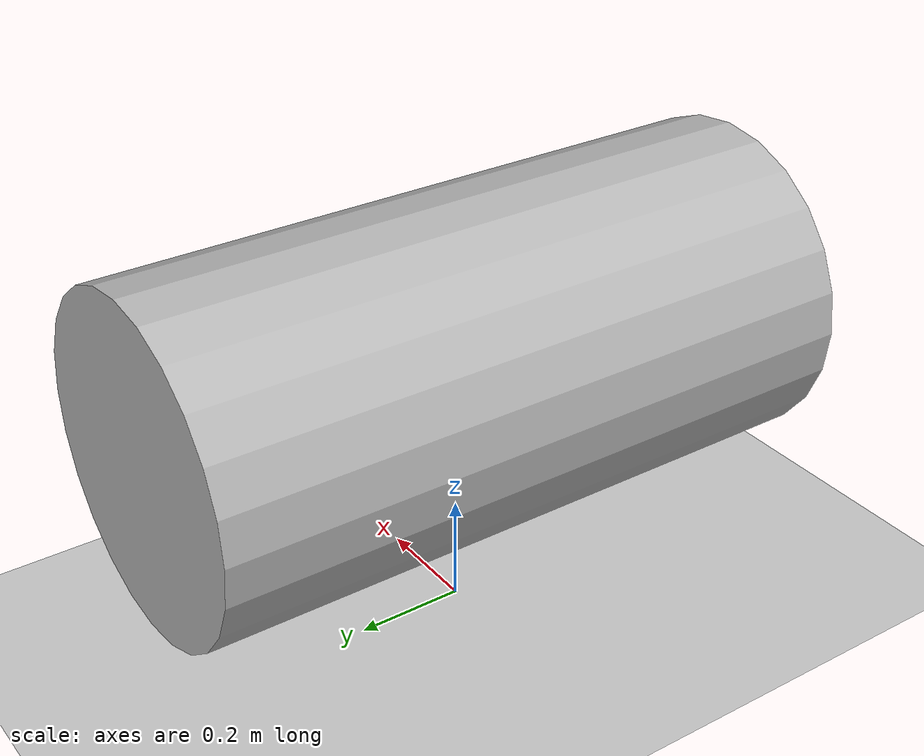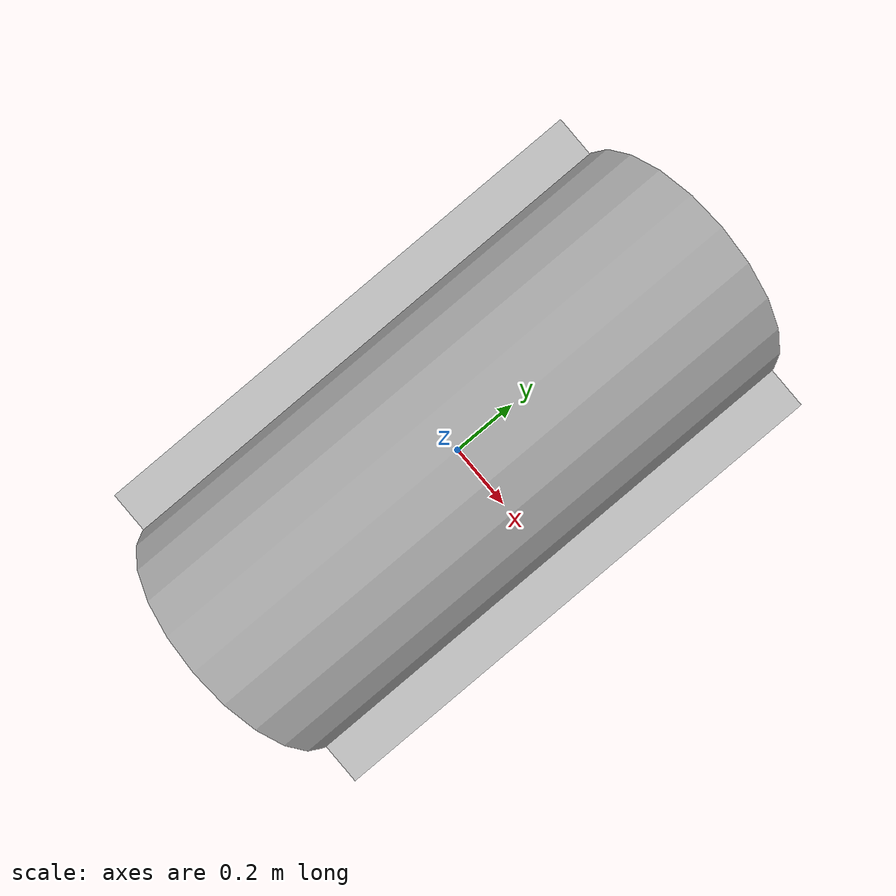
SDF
<?xml version="1.0"?>
<sdf version="1.4">
  <world name="default">

    <!-- Ground Plane -->
    <include>
      <uri>model://ground_plane</uri>
    </include>

    <include>
      <uri>model://sun</uri>
    </include>

    <model name="cylinder">
      <pose>0 0 0.5 1.57 0 0</pose>
      <link name="link">
        <collision name="collision">
          <geometry>
            <cylinder>
              <radius>0.3</radius>
              <length>1.2</length>
            </cylinder>
        </geometry>
        </collision>

        <visual name="visual">
          <geometry>
            <cylinder>
              <radius>0.3</radius>
              <length>1.2</length>
            </cylinder>
        </geometry>
        </visual>
      </link>
      <plugin name="model_move_plugin" filename="libmodel_move_plugin.so"/>
    </model>
  </world>
</sdf>
